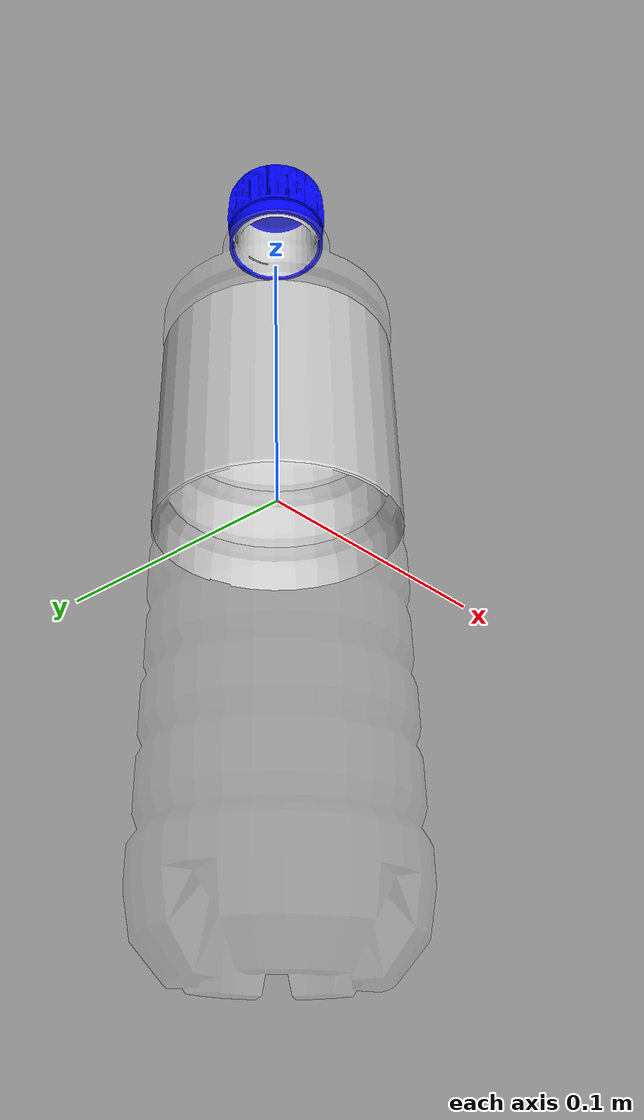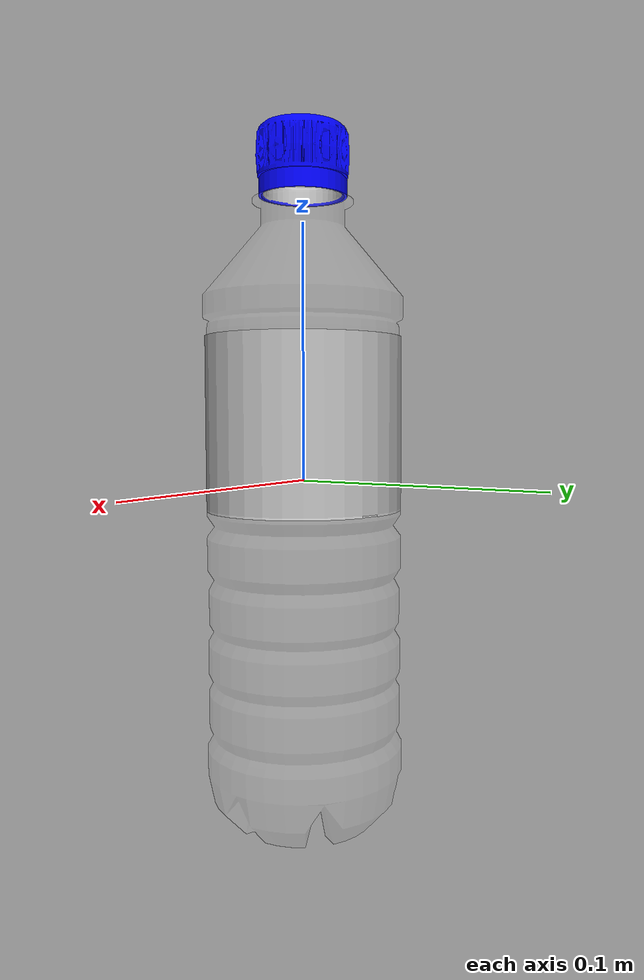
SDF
<?xml version='1.0'?>
<sdf version='1.6'>
  <model name='water'>
    <link name='link_0'>
      <inertial>
        <mass>0.5</mass>
        <inertia>
          <ixx>0.004131</ixx>
          <ixy>0</ixy>
          <ixz>0</ixz>
          <iyy>0.004016</iyy>
          <iyz>0</iyz>
          <izz>0.0007977</izz>
        </inertia>
        <pose frame=''>0 0 0 0 -0 0</pose>
      </inertial>
      <pose frame=''>-0 -0 0 0 -0 0</pose>
      <gravity>1</gravity>
      <self_collide>0</self_collide>
      <kinematic>0</kinematic>
      <enable_wind>0</enable_wind>
      <visual name='visual'>
        <pose frame=''>0.0 -0.0 0.0 0 -0 0</pose>
        <geometry>
          <mesh>
          <uri>model:///water/meshes/water.dae</uri>
	  <scale>0.2 0.2 0.2</scale>
        </mesh>
        </geometry>
        <transparency>0.8</transparency>
        <cast_shadows>1</cast_shadows>
      </visual>
      <visual name='visual1'>
        <pose frame=''>0.0 -0.0 0.0 0 -0 0</pose>
        <geometry>
          <mesh>
          <uri>model:///water/meshes/waterLabel.dae</uri>
	  <scale>0.2 0.2 0.2</scale>
        </mesh>
        </geometry>
        <transparency>0</transparency>
        <cast_shadows>1</cast_shadows>
      </visual>
      <collision name='collision'>
        <laser_retro>0</laser_retro>
        <max_contacts>10</max_contacts>
        <pose frame=''>0 0 0 0 -0 0</pose>
        <geometry>
            <cylinder>
              <radius>.04</radius>
              <length>.27</length>
            </cylinder>
        </geometry>
        <surface>
          <friction>
            <ode>
              <mu>1</mu>
              <mu2>1</mu2>
              <fdir1>0 0 0</fdir1>
              <slip1>0</slip1>
              <slip2>0</slip2>
            </ode>
            <torsional>
              <coefficient>1</coefficient>
              <patch_radius>0</patch_radius>
              <surface_radius>0</surface_radius>
              <use_patch_radius>1</use_patch_radius>
              <ode>
                <slip>0</slip>
              </ode>
            </torsional>
          </friction>
          <bounce>
            <restitution_coefficient>0</restitution_coefficient>
            <threshold>1e+06</threshold>
          </bounce>
          <contact>
            <collide_without_contact>0</collide_without_contact>
            <collide_without_contact_bitmask>1</collide_without_contact_bitmask>
            <collide_bitmask>1</collide_bitmask>
            <ode>
              <soft_cfm>0</soft_cfm>
              <soft_erp>0.2</soft_erp>
              <kp>1e+13</kp>
              <kd>1</kd>
              <max_vel>0.01</max_vel>
              <min_depth>0</min_depth>
            </ode>
            <bullet>
              <split_impulse>1</split_impulse>
              <split_impulse_penetration_threshold>-0.01</split_impulse_penetration_threshold>
              <soft_cfm>0</soft_cfm>
              <soft_erp>0.2</soft_erp>
              <kp>1e+13</kp>
              <kd>1</kd>
            </bullet>
          </contact>
        </surface>
      </collision>
    </link>
    <static>0</static>
    <allow_auto_disable>1</allow_auto_disable>
  </model>
</sdf>
